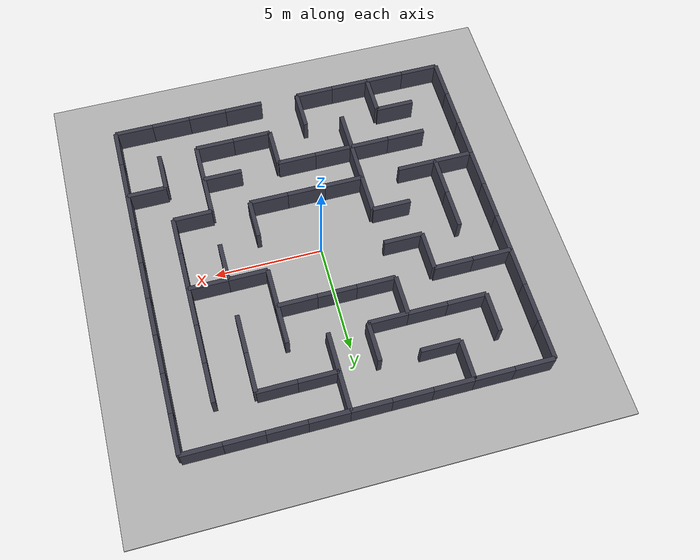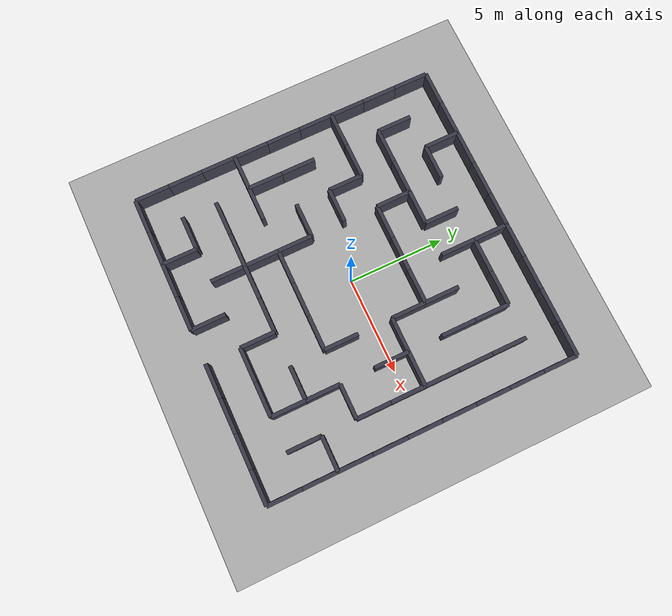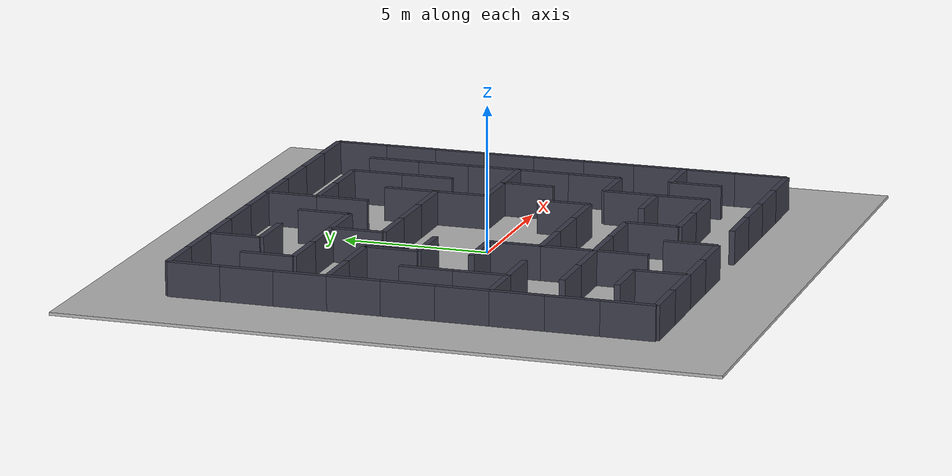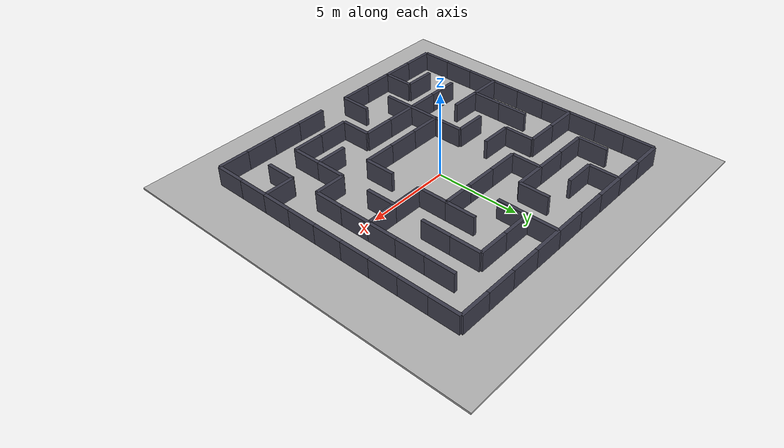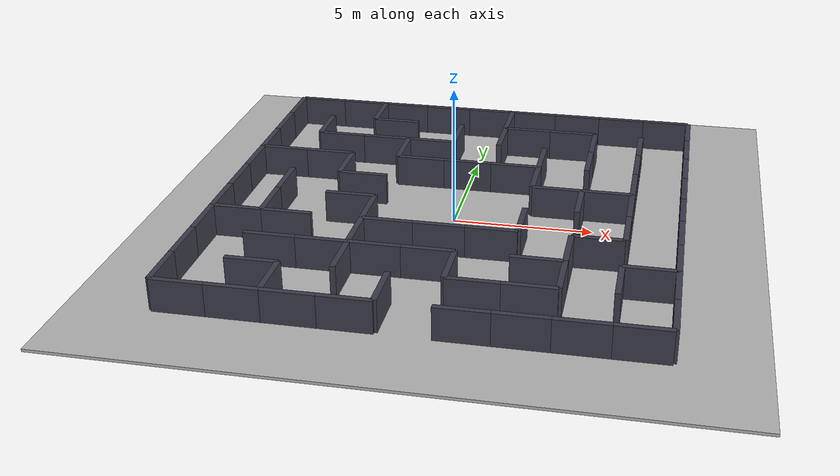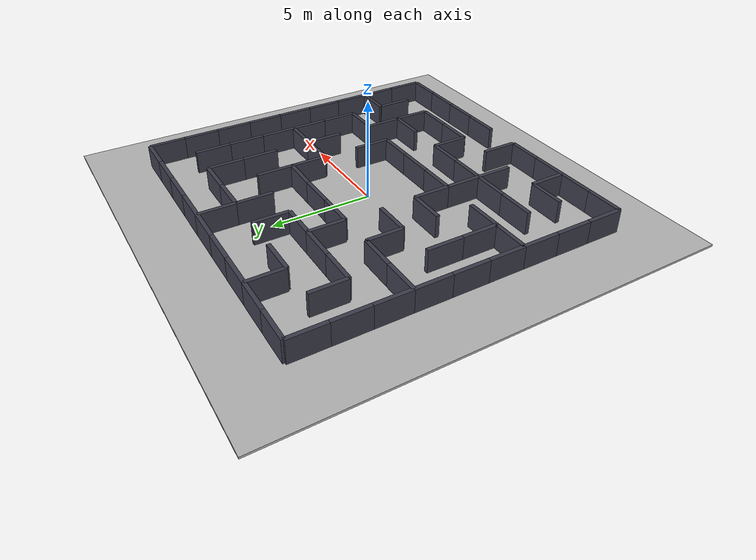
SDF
<?xml version='1.0'?>
<sdf version='1.9'>
  <!-- 9 x 9 cell maze. Cell pitch: 1.8 m, wall thickness: 0.2 m, clear width: 1.6 m. -->
  <world name='roboworks_world'>
    <physics name='default_physics' type='ode'>
      <max_step_size>0.001</max_step_size>
      <real_time_factor>1.0</real_time_factor>
      <real_time_update_rate>1000</real_time_update_rate>
    </physics>

    <plugin filename='gz-sim-physics-system' name='gz::sim::systems::Physics'/>
    <plugin filename='gz-sim-user-commands-system' name='gz::sim::systems::UserCommands'/>
    <plugin filename='gz-sim-sensors-system' name='gz::sim::systems::Sensors'/>
    <plugin filename='gz-sim-imu-system' name='gz::sim::systems::Imu'/>
    <plugin filename='gz-sim-scene-broadcaster-system' name='gz::sim::systems::SceneBroadcaster'/>

    <light name='sun' type='directional'>
      <pose>0 0 12 0 0 0</pose>
      <cast_shadows>true</cast_shadows>
      <diffuse>0.9 0.9 0.9 1</diffuse>
      <specular>0.2 0.2 0.2 1</specular>
      <direction>-0.5 0.1 -1</direction>
    </light>

    <model name='maze_ground'>
      <static>true</static>
      <link name='ground_link'>
        <collision name='ground_collision'><geometry><box><size>22 22 0.1</size></box></geometry></collision>
        <visual name='ground_visual'>
          <geometry><box><size>22 22 0.1</size></box></geometry>
          <material><ambient>0.72 0.72 0.72 1</ambient><diffuse>0.72 0.72 0.72 1</diffuse></material>
        </visual>
      </link>
    </model>

    <model name='maze_walls'>
      <static>true</static>
      <link name='walls'>
        <collision name='wall_0_collision'><pose>-6.3 -1.8 0.6 0 0 0</pose><geometry><box><size>0.2 1.8 1.2</size></box></geometry></collision>
        <collision name='wall_1_collision'><pose>-6.3 0.0 0.6 0 0 0</pose><geometry><box><size>0.2 1.8 1.2</size></box></geometry></collision>
        <collision name='wall_2_collision'><pose>-6.3 5.4 0.6 0 0 0</pose><geometry><box><size>0.2 1.8 1.2</size></box></geometry></collision>
        <collision name='wall_3_collision'><pose>-4.5 -7.2 0.6 0 0 0</pose><geometry><box><size>0.2 1.8 1.2</size></box></geometry></collision>
        <collision name='wall_4_collision'><pose>-4.5 1.8 0.6 0 0 0</pose><geometry><box><size>0.2 1.8 1.2</size></box></geometry></collision>
        <collision name='wall_5_collision'><pose>-4.5 7.2 0.6 0 0 0</pose><geometry><box><size>0.2 1.8 1.2</size></box></geometry></collision>
        <collision name='wall_6_collision'><pose>-2.7 -5.4 0.6 0 0 0</pose><geometry><box><size>0.2 1.8 1.2</size></box></geometry></collision>
        <collision name='wall_7_collision'><pose>-2.7 -3.6 0.6 0 0 0</pose><geometry><box><size>0.2 1.8 1.2</size></box></geometry></collision>
        <collision name='wall_8_collision'><pose>-2.7 -1.8 0.6 0 0 0</pose><geometry><box><size>0.2 1.8 1.2</size></box></geometry></collision>
        <collision name='wall_9_collision'><pose>-2.7 3.6 0.6 0 0 0</pose><geometry><box><size>0.2 1.8 1.2</size></box></geometry></collision>
        <collision name='wall_10_collision'><pose>-0.9 -7.2 0.6 0 0 0</pose><geometry><box><size>0.2 1.8 1.2</size></box></geometry></collision>
        <collision name='wall_11_collision'><pose>-0.9 5.4 0.6 0 0 0</pose><geometry><box><size>0.2 1.8 1.2</size></box></geometry></collision>
        <collision name='wall_12_collision'><pose>0.9 -5.4 0.6 0 0 0</pose><geometry><box><size>0.2 1.8 1.2</size></box></geometry></collision>
        <collision name='wall_13_collision'><pose>0.9 5.4 0.6 0 0 0</pose><geometry><box><size>0.2 1.8 1.2</size></box></geometry></collision>
        <collision name='wall_14_collision'><pose>0.9 7.2 0.6 0 0 0</pose><geometry><box><size>0.2 1.8 1.2</size></box></geometry></collision>
        <collision name='wall_15_collision'><pose>2.7 -1.8 0.6 0 0 0</pose><geometry><box><size>0.2 1.8 1.2</size></box></geometry></collision>
        <collision name='wall_16_collision'><pose>2.7 1.8 0.6 0 0 0</pose><geometry><box><size>0.2 1.8 1.2</size></box></geometry></collision>
        <collision name='wall_17_collision'><pose>2.7 3.6 0.6 0 0 0</pose><geometry><box><size>0.2 1.8 1.2</size></box></geometry></collision>
        <collision name='wall_18_collision'><pose>4.5 -5.4 0.6 0 0 0</pose><geometry><box><size>0.2 1.8 1.2</size></box></geometry></collision>
        <collision name='wall_19_collision'><pose>4.5 -3.6 0.6 0 0 0</pose><geometry><box><size>0.2 1.8 1.2</size></box></geometry></collision>
        <collision name='wall_20_collision'><pose>4.5 0.0 0.6 0 0 0</pose><geometry><box><size>0.2 1.8 1.2</size></box></geometry></collision>
        <collision name='wall_21_collision'><pose>4.5 3.6 0.6 0 0 0</pose><geometry><box><size>0.2 1.8 1.2</size></box></geometry></collision>
        <collision name='wall_22_collision'><pose>4.5 5.4 0.6 0 0 0</pose><geometry><box><size>0.2 1.8 1.2</size></box></geometry></collision>
        <collision name='wall_23_collision'><pose>6.3 -5.4 0.6 0 0 0</pose><geometry><box><size>0.2 1.8 1.2</size></box></geometry></collision>
        <collision name='wall_24_collision'><pose>6.3 -1.8 0.6 0 0 0</pose><geometry><box><size>0.2 1.8 1.2</size></box></geometry></collision>
        <collision name='wall_25_collision'><pose>6.3 0.0 0.6 0 0 0</pose><geometry><box><size>0.2 1.8 1.2</size></box></geometry></collision>
        <collision name='wall_26_collision'><pose>6.3 1.8 0.6 0 0 0</pose><geometry><box><size>0.2 1.8 1.2</size></box></geometry></collision>
        <collision name='wall_27_collision'><pose>6.3 3.6 0.6 0 0 0</pose><geometry><box><size>0.2 1.8 1.2</size></box></geometry></collision>
        <collision name='wall_28_collision'><pose>6.3 5.4 0.6 0 0 0</pose><geometry><box><size>0.2 1.8 1.2</size></box></geometry></collision>
        <collision name='wall_29_collision'><pose>-7.2 -2.7 0.6 0 0 0</pose><geometry><box><size>1.8 0.2 1.2</size></box></geometry></collision>
        <collision name='wall_30_collision'><pose>-7.2 2.7 0.6 0 0 0</pose><geometry><box><size>1.8 0.2 1.2</size></box></geometry></collision>
        <collision name='wall_31_collision'><pose>-5.4 -6.3 0.6 0 0 0</pose><geometry><box><size>1.8 0.2 1.2</size></box></geometry></collision>
        <collision name='wall_32_collision'><pose>-5.4 -4.5 0.6 0 0 0</pose><geometry><box><size>1.8 0.2 1.2</size></box></geometry></collision>
        <collision name='wall_33_collision'><pose>-5.4 -2.7 0.6 0 0 0</pose><geometry><box><size>1.8 0.2 1.2</size></box></geometry></collision>
        <collision name='wall_34_collision'><pose>-5.4 2.7 0.6 0 0 0</pose><geometry><box><size>1.8 0.2 1.2</size></box></geometry></collision>
        <collision name='wall_35_collision'><pose>-5.4 4.5 0.6 0 0 0</pose><geometry><box><size>1.8 0.2 1.2</size></box></geometry></collision>
        <collision name='wall_36_collision'><pose>-3.6 -4.5 0.6 0 0 0</pose><geometry><box><size>1.8 0.2 1.2</size></box></geometry></collision>
        <collision name='wall_37_collision'><pose>-3.6 -0.9 0.6 0 0 0</pose><geometry><box><size>1.8 0.2 1.2</size></box></geometry></collision>
        <collision name='wall_38_collision'><pose>-3.6 0.9 0.6 0 0 0</pose><geometry><box><size>1.8 0.2 1.2</size></box></geometry></collision>
        <collision name='wall_39_collision'><pose>-3.6 4.5 0.6 0 0 0</pose><geometry><box><size>1.8 0.2 1.2</size></box></geometry></collision>
        <collision name='wall_40_collision'><pose>-3.6 6.3 0.6 0 0 0</pose><geometry><box><size>1.8 0.2 1.2</size></box></geometry></collision>
        <collision name='wall_41_collision'><pose>-1.8 -4.5 0.6 0 0 0</pose><geometry><box><size>1.8 0.2 1.2</size></box></geometry></collision>
        <collision name='wall_42_collision'><pose>-1.8 -2.7 0.6 0 0 0</pose><geometry><box><size>1.8 0.2 1.2</size></box></geometry></collision>
        <collision name='wall_43_collision'><pose>-1.8 2.7 0.6 0 0 0</pose><geometry><box><size>1.8 0.2 1.2</size></box></geometry></collision>
        <collision name='wall_44_collision'><pose>-1.8 4.5 0.6 0 0 0</pose><geometry><box><size>1.8 0.2 1.2</size></box></geometry></collision>
        <collision name='wall_45_collision'><pose>0.0 -4.5 0.6 0 0 0</pose><geometry><box><size>1.8 0.2 1.2</size></box></geometry></collision>
        <collision name='wall_46_collision'><pose>0.0 -2.7 0.6 0 0 0</pose><geometry><box><size>1.8 0.2 1.2</size></box></geometry></collision>
        <collision name='wall_47_collision'><pose>0.0 2.7 0.6 0 0 0</pose><geometry><box><size>1.8 0.2 1.2</size></box></geometry></collision>
        <collision name='wall_48_collision'><pose>1.8 -6.3 0.6 0 0 0</pose><geometry><box><size>1.8 0.2 1.2</size></box></geometry></collision>
        <collision name='wall_49_collision'><pose>1.8 -2.7 0.6 0 0 0</pose><geometry><box><size>1.8 0.2 1.2</size></box></geometry></collision>
        <collision name='wall_50_collision'><pose>1.8 2.7 0.6 0 0 0</pose><geometry><box><size>1.8 0.2 1.2</size></box></geometry></collision>
        <collision name='wall_51_collision'><pose>1.8 6.3 0.6 0 0 0</pose><geometry><box><size>1.8 0.2 1.2</size></box></geometry></collision>
        <collision name='wall_52_collision'><pose>3.6 -6.3 0.6 0 0 0</pose><geometry><box><size>1.8 0.2 1.2</size></box></geometry></collision>
        <collision name='wall_53_collision'><pose>3.6 -4.5 0.6 0 0 0</pose><geometry><box><size>1.8 0.2 1.2</size></box></geometry></collision>
        <collision name='wall_54_collision'><pose>3.6 0.9 0.6 0 0 0</pose><geometry><box><size>1.8 0.2 1.2</size></box></geometry></collision>
        <collision name='wall_55_collision'><pose>3.6 6.3 0.6 0 0 0</pose><geometry><box><size>1.8 0.2 1.2</size></box></geometry></collision>
        <collision name='wall_56_collision'><pose>5.4 -2.7 0.6 0 0 0</pose><geometry><box><size>1.8 0.2 1.2</size></box></geometry></collision>
        <collision name='wall_57_collision'><pose>5.4 0.9 0.6 0 0 0</pose><geometry><box><size>1.8 0.2 1.2</size></box></geometry></collision>
        <collision name='wall_58_collision'><pose>7.2 -4.5 0.6 0 0 0</pose><geometry><box><size>1.8 0.2 1.2</size></box></geometry></collision>
        <collision name='wall_59_collision'><pose>-7.2 -8.1 0.6 0 0 0</pose><geometry><box><size>1.8 0.2 1.2</size></box></geometry></collision>
        <collision name='wall_60_collision'><pose>-7.2 8.1 0.6 0 0 0</pose><geometry><box><size>1.8 0.2 1.2</size></box></geometry></collision>
        <collision name='wall_61_collision'><pose>-5.4 -8.1 0.6 0 0 0</pose><geometry><box><size>1.8 0.2 1.2</size></box></geometry></collision>
        <collision name='wall_62_collision'><pose>-5.4 8.1 0.6 0 0 0</pose><geometry><box><size>1.8 0.2 1.2</size></box></geometry></collision>
        <collision name='wall_63_collision'><pose>-3.6 -8.1 0.6 0 0 0</pose><geometry><box><size>1.8 0.2 1.2</size></box></geometry></collision>
        <collision name='wall_64_collision'><pose>-3.6 8.1 0.6 0 0 0</pose><geometry><box><size>1.8 0.2 1.2</size></box></geometry></collision>
        <collision name='wall_65_collision'><pose>-1.8 -8.1 0.6 0 0 0</pose><geometry><box><size>1.8 0.2 1.2</size></box></geometry></collision>
        <collision name='wall_66_collision'><pose>-1.8 8.1 0.6 0 0 0</pose><geometry><box><size>1.8 0.2 1.2</size></box></geometry></collision>
        <collision name='wall_67_collision'><pose>0.0 8.1 0.6 0 0 0</pose><geometry><box><size>1.8 0.2 1.2</size></box></geometry></collision>
        <collision name='wall_68_collision'><pose>1.8 -8.1 0.6 0 0 0</pose><geometry><box><size>1.8 0.2 1.2</size></box></geometry></collision>
        <collision name='wall_69_collision'><pose>1.8 8.1 0.6 0 0 0</pose><geometry><box><size>1.8 0.2 1.2</size></box></geometry></collision>
        <collision name='wall_70_collision'><pose>3.6 -8.1 0.6 0 0 0</pose><geometry><box><size>1.8 0.2 1.2</size></box></geometry></collision>
        <collision name='wall_71_collision'><pose>3.6 8.1 0.6 0 0 0</pose><geometry><box><size>1.8 0.2 1.2</size></box></geometry></collision>
        <collision name='wall_72_collision'><pose>5.4 -8.1 0.6 0 0 0</pose><geometry><box><size>1.8 0.2 1.2</size></box></geometry></collision>
        <collision name='wall_73_collision'><pose>5.4 8.1 0.6 0 0 0</pose><geometry><box><size>1.8 0.2 1.2</size></box></geometry></collision>
        <collision name='wall_74_collision'><pose>7.2 -8.1 0.6 0 0 0</pose><geometry><box><size>1.8 0.2 1.2</size></box></geometry></collision>
        <collision name='wall_75_collision'><pose>7.2 8.1 0.6 0 0 0</pose><geometry><box><size>1.8 0.2 1.2</size></box></geometry></collision>
        <collision name='wall_76_collision'><pose>-8.1 -7.2 0.6 0 0 0</pose><geometry><box><size>0.2 1.8 1.2</size></box></geometry></collision>
        <collision name='wall_77_collision'><pose>8.1 -7.2 0.6 0 0 0</pose><geometry><box><size>0.2 1.8 1.2</size></box></geometry></collision>
        <collision name='wall_78_collision'><pose>-8.1 -5.4 0.6 0 0 0</pose><geometry><box><size>0.2 1.8 1.2</size></box></geometry></collision>
        <collision name='wall_79_collision'><pose>8.1 -5.4 0.6 0 0 0</pose><geometry><box><size>0.2 1.8 1.2</size></box></geometry></collision>
        <collision name='wall_80_collision'><pose>-8.1 -3.6 0.6 0 0 0</pose><geometry><box><size>0.2 1.8 1.2</size></box></geometry></collision>
        <collision name='wall_81_collision'><pose>8.1 -3.6 0.6 0 0 0</pose><geometry><box><size>0.2 1.8 1.2</size></box></geometry></collision>
        <collision name='wall_82_collision'><pose>-8.1 -1.8 0.6 0 0 0</pose><geometry><box><size>0.2 1.8 1.2</size></box></geometry></collision>
        <collision name='wall_83_collision'><pose>8.1 -1.8 0.6 0 0 0</pose><geometry><box><size>0.2 1.8 1.2</size></box></geometry></collision>
        <collision name='wall_84_collision'><pose>-8.1 0.0 0.6 0 0 0</pose><geometry><box><size>0.2 1.8 1.2</size></box></geometry></collision>
        <collision name='wall_85_collision'><pose>8.1 0.0 0.6 0 0 0</pose><geometry><box><size>0.2 1.8 1.2</size></box></geometry></collision>
        <collision name='wall_86_collision'><pose>-8.1 1.8 0.6 0 0 0</pose><geometry><box><size>0.2 1.8 1.2</size></box></geometry></collision>
        <collision name='wall_87_collision'><pose>8.1 1.8 0.6 0 0 0</pose><geometry><box><size>0.2 1.8 1.2</size></box></geometry></collision>
        <collision name='wall_88_collision'><pose>-8.1 3.6 0.6 0 0 0</pose><geometry><box><size>0.2 1.8 1.2</size></box></geometry></collision>
        <collision name='wall_89_collision'><pose>8.1 3.6 0.6 0 0 0</pose><geometry><box><size>0.2 1.8 1.2</size></box></geometry></collision>
        <collision name='wall_90_collision'><pose>-8.1 5.4 0.6 0 0 0</pose><geometry><box><size>0.2 1.8 1.2</size></box></geometry></collision>
        <collision name='wall_91_collision'><pose>8.1 5.4 0.6 0 0 0</pose><geometry><box><size>0.2 1.8 1.2</size></box></geometry></collision>
        <collision name='wall_92_collision'><pose>-8.1 7.2 0.6 0 0 0</pose><geometry><box><size>0.2 1.8 1.2</size></box></geometry></collision>
        <collision name='wall_93_collision'><pose>8.1 7.2 0.6 0 0 0</pose><geometry><box><size>0.2 1.8 1.2</size></box></geometry></collision>

        <visual name='wall_0_visual'><pose>-6.3 -1.8 0.6 0 0 0</pose><geometry><box><size>0.2 1.8 1.2</size></box></geometry><material><ambient>0.18 0.18 0.22 1</ambient><diffuse>0.24 0.24 0.30 1</diffuse></material></visual>
        <visual name='wall_1_visual'><pose>-6.3 0.0 0.6 0 0 0</pose><geometry><box><size>0.2 1.8 1.2</size></box></geometry><material><ambient>0.18 0.18 0.22 1</ambient><diffuse>0.24 0.24 0.30 1</diffuse></material></visual>
        <visual name='wall_2_visual'><pose>-6.3 5.4 0.6 0 0 0</pose><geometry><box><size>0.2 1.8 1.2</size></box></geometry><material><ambient>0.18 0.18 0.22 1</ambient><diffuse>0.24 0.24 0.30 1</diffuse></material></visual>
        <visual name='wall_3_visual'><pose>-4.5 -7.2 0.6 0 0 0</pose><geometry><box><size>0.2 1.8 1.2</size></box></geometry><material><ambient>0.18 0.18 0.22 1</ambient><diffuse>0.24 0.24 0.30 1</diffuse></material></visual>
        <visual name='wall_4_visual'><pose>-4.5 1.8 0.6 0 0 0</pose><geometry><box><size>0.2 1.8 1.2</size></box></geometry><material><ambient>0.18 0.18 0.22 1</ambient><diffuse>0.24 0.24 0.30 1</diffuse></material></visual>
        <visual name='wall_5_visual'><pose>-4.5 7.2 0.6 0 0 0</pose><geometry><box><size>0.2 1.8 1.2</size></box></geometry><material><ambient>0.18 0.18 0.22 1</ambient><diffuse>0.24 0.24 0.30 1</diffuse></material></visual>
        <visual name='wall_6_visual'><pose>-2.7 -5.4 0.6 0 0 0</pose><geometry><box><size>0.2 1.8 1.2</size></box></geometry><material><ambient>0.18 0.18 0.22 1</ambient><diffuse>0.24 0.24 0.30 1</diffuse></material></visual>
        <visual name='wall_7_visual'><pose>-2.7 -3.6 0.6 0 0 0</pose><geometry><box><size>0.2 1.8 1.2</size></box></geometry><material><ambient>0.18 0.18 0.22 1</ambient><diffuse>0.24 0.24 0.30 1</diffuse></material></visual>
        <visual name='wall_8_visual'><pose>-2.7 -1.8 0.6 0 0 0</pose><geometry><box><size>0.2 1.8 1.2</size></box></geometry><material><ambient>0.18 0.18 0.22 1</ambient><diffuse>0.24 0.24 0.30 1</diffuse></material></visual>
        <visual name='wall_9_visual'><pose>-2.7 3.6 0.6 0 0 0</pose><geometry><box><size>0.2 1.8 1.2</size></box></geometry><material><ambient>0.18 0.18 0.22 1</ambient><diffuse>0.24 0.24 0.30 1</diffuse></material></visual>
        <visual name='wall_10_visual'><pose>-0.9 -7.2 0.6 0 0 0</pose><geometry><box><size>0.2 1.8 1.2</size></box></geometry><material><ambient>0.18 0.18 0.22 1</ambient><diffuse>0.24 0.24 0.30 1</diffuse></material></visual>
        <visual name='wall_11_visual'><pose>-0.9 5.4 0.6 0 0 0</pose><geometry><box><size>0.2 1.8 1.2</size></box></geometry><material><ambient>0.18 0.18 0.22 1</ambient><diffuse>0.24 0.24 0.30 1</diffuse></material></visual>
        <visual name='wall_12_visual'><pose>0.9 -5.4 0.6 0 0 0</pose><geometry><box><size>0.2 1.8 1.2</size></box></geometry><material><ambient>0.18 0.18 0.22 1</ambient><diffuse>0.24 0.24 0.30 1</diffuse></material></visual>
        <visual name='wall_13_visual'><pose>0.9 5.4 0.6 0 0 0</pose><geometry><box><size>0.2 1.8 1.2</size></box></geometry><material><ambient>0.18 0.18 0.22 1</ambient><diffuse>0.24 0.24 0.30 1</diffuse></material></visual>
        <visual name='wall_14_visual'><pose>0.9 7.2 0.6 0 0 0</pose><geometry><box><size>0.2 1.8 1.2</size></box></geometry><material><ambient>0.18 0.18 0.22 1</ambient><diffuse>0.24 0.24 0.30 1</diffuse></material></visual>
        <visual name='wall_15_visual'><pose>2.7 -1.8 0.6 0 0 0</pose><geometry><box><size>0.2 1.8 1.2</size></box></geometry><material><ambient>0.18 0.18 0.22 1</ambient><diffuse>0.24 0.24 0.30 1</diffuse></material></visual>
        <visual name='wall_16_visual'><pose>2.7 1.8 0.6 0 0 0</pose><geometry><box><size>0.2 1.8 1.2</size></box></geometry><material><ambient>0.18 0.18 0.22 1</ambient><diffuse>0.24 0.24 0.30 1</diffuse></material></visual>
        <visual name='wall_17_visual'><pose>2.7 3.6 0.6 0 0 0</pose><geometry><box><size>0.2 1.8 1.2</size></box></geometry><material><ambient>0.18 0.18 0.22 1</ambient><diffuse>0.24 0.24 0.30 1</diffuse></material></visual>
        <visual name='wall_18_visual'><pose>4.5 -5.4 0.6 0 0 0</pose><geometry><box><size>0.2 1.8 1.2</size></box></geometry><material><ambient>0.18 0.18 0.22 1</ambient><diffuse>0.24 0.24 0.30 1</diffuse></material></visual>
        <visual name='wall_19_visual'><pose>4.5 -3.6 0.6 0 0 0</pose><geometry><box><size>0.2 1.8 1.2</size></box></geometry><material><ambient>0.18 0.18 0.22 1</ambient><diffuse>0.24 0.24 0.30 1</diffuse></material></visual>
        <visual name='wall_20_visual'><pose>4.5 0.0 0.6 0 0 0</pose><geometry><box><size>0.2 1.8 1.2</size></box></geometry><material><ambient>0.18 0.18 0.22 1</ambient><diffuse>0.24 0.24 0.30 1</diffuse></material></visual>
        <visual name='wall_21_visual'><pose>4.5 3.6 0.6 0 0 0</pose><geometry><box><size>0.2 1.8 1.2</size></box></geometry><material><ambient>0.18 0.18 0.22 1</ambient><diffuse>0.24 0.24 0.30 1</diffuse></material></visual>
        <visual name='wall_22_visual'><pose>4.5 5.4 0.6 0 0 0</pose><geometry><box><size>0.2 1.8 1.2</size></box></geometry><material><ambient>0.18 0.18 0.22 1</ambient><diffuse>0.24 0.24 0.30 1</diffuse></material></visual>
        <visual name='wall_23_visual'><pose>6.3 -5.4 0.6 0 0 0</pose><geometry><box><size>0.2 1.8 1.2</size></box></geometry><material><ambient>0.18 0.18 0.22 1</ambient><diffuse>0.24 0.24 0.30 1</diffuse></material></visual>
        <visual name='wall_24_visual'><pose>6.3 -1.8 0.6 0 0 0</pose><geometry><box><size>0.2 1.8 1.2</size></box></geometry><material><ambient>0.18 0.18 0.22 1</ambient><diffuse>0.24 0.24 0.30 1</diffuse></material></visual>
        <visual name='wall_25_visual'><pose>6.3 0.0 0.6 0 0 0</pose><geometry><box><size>0.2 1.8 1.2</size></box></geometry><material><ambient>0.18 0.18 0.22 1</ambient><diffuse>0.24 0.24 0.30 1</diffuse></material></visual>
        <visual name='wall_26_visual'><pose>6.3 1.8 0.6 0 0 0</pose><geometry><box><size>0.2 1.8 1.2</size></box></geometry><material><ambient>0.18 0.18 0.22 1</ambient><diffuse>0.24 0.24 0.30 1</diffuse></material></visual>
        <visual name='wall_27_visual'><pose>6.3 3.6 0.6 0 0 0</pose><geometry><box><size>0.2 1.8 1.2</size></box></geometry><material><ambient>0.18 0.18 0.22 1</ambient><diffuse>0.24 0.24 0.30 1</diffuse></material></visual>
        <visual name='wall_28_visual'><pose>6.3 5.4 0.6 0 0 0</pose><geometry><box><size>0.2 1.8 1.2</size></box></geometry><material><ambient>0.18 0.18 0.22 1</ambient><diffuse>0.24 0.24 0.30 1</diffuse></material></visual>
        <visual name='wall_29_visual'><pose>-7.2 -2.7 0.6 0 0 0</pose><geometry><box><size>1.8 0.2 1.2</size></box></geometry><material><ambient>0.18 0.18 0.22 1</ambient><diffuse>0.24 0.24 0.30 1</diffuse></material></visual>
        <visual name='wall_30_visual'><pose>-7.2 2.7 0.6 0 0 0</pose><geometry><box><size>1.8 0.2 1.2</size></box></geometry><material><ambient>0.18 0.18 0.22 1</ambient><diffuse>0.24 0.24 0.30 1</diffuse></material></visual>
        <visual name='wall_31_visual'><pose>-5.4 -6.3 0.6 0 0 0</pose><geometry><box><size>1.8 0.2 1.2</size></box></geometry><material><ambient>0.18 0.18 0.22 1</ambient><diffuse>0.24 0.24 0.30 1</diffuse></material></visual>
        <visual name='wall_32_visual'><pose>-5.4 -4.5 0.6 0 0 0</pose><geometry><box><size>1.8 0.2 1.2</size></box></geometry><material><ambient>0.18 0.18 0.22 1</ambient><diffuse>0.24 0.24 0.30 1</diffuse></material></visual>
        <visual name='wall_33_visual'><pose>-5.4 -2.7 0.6 0 0 0</pose><geometry><box><size>1.8 0.2 1.2</size></box></geometry><material><ambient>0.18 0.18 0.22 1</ambient><diffuse>0.24 0.24 0.30 1</diffuse></material></visual>
        <visual name='wall_34_visual'><pose>-5.4 2.7 0.6 0 0 0</pose><geometry><box><size>1.8 0.2 1.2</size></box></geometry><material><ambient>0.18 0.18 0.22 1</ambient><diffuse>0.24 0.24 0.30 1</diffuse></material></visual>
        <visual name='wall_35_visual'><pose>-5.4 4.5 0.6 0 0 0</pose><geometry><box><size>1.8 0.2 1.2</size></box></geometry><material><ambient>0.18 0.18 0.22 1</ambient><diffuse>0.24 0.24 0.30 1</diffuse></material></visual>
        <visual name='wall_36_visual'><pose>-3.6 -4.5 0.6 0 0 0</pose><geometry><box><size>1.8 0.2 1.2</size></box></geometry><material><ambient>0.18 0.18 0.22 1</ambient><diffuse>0.24 0.24 0.30 1</diffuse></material></visual>
        <visual name='wall_37_visual'><pose>-3.6 -0.9 0.6 0 0 0</pose><geometry><box><size>1.8 0.2 1.2</size></box></geometry><material><ambient>0.18 0.18 0.22 1</ambient><diffuse>0.24 0.24 0.30 1</diffuse></material></visual>
        <visual name='wall_38_visual'><pose>-3.6 0.9 0.6 0 0 0</pose><geometry><box><size>1.8 0.2 1.2</size></box></geometry><material><ambient>0.18 0.18 0.22 1</ambient><diffuse>0.24 0.24 0.30 1</diffuse></material></visual>
        <visual name='wall_39_visual'><pose>-3.6 4.5 0.6 0 0 0</pose><geometry><box><size>1.8 0.2 1.2</size></box></geometry><material><ambient>0.18 0.18 0.22 1</ambient><diffuse>0.24 0.24 0.30 1</diffuse></material></visual>
        <visual name='wall_40_visual'><pose>-3.6 6.3 0.6 0 0 0</pose><geometry><box><size>1.8 0.2 1.2</size></box></geometry><material><ambient>0.18 0.18 0.22 1</ambient><diffuse>0.24 0.24 0.30 1</diffuse></material></visual>
        <visual name='wall_41_visual'><pose>-1.8 -4.5 0.6 0 0 0</pose><geometry><box><size>1.8 0.2 1.2</size></box></geometry><material><ambient>0.18 0.18 0.22 1</ambient><diffuse>0.24 0.24 0.30 1</diffuse></material></visual>
        <visual name='wall_42_visual'><pose>-1.8 -2.7 0.6 0 0 0</pose><geometry><box><size>1.8 0.2 1.2</size></box></geometry><material><ambient>0.18 0.18 0.22 1</ambient><diffuse>0.24 0.24 0.30 1</diffuse></material></visual>
        <visual name='wall_43_visual'><pose>-1.8 2.7 0.6 0 0 0</pose><geometry><box><size>1.8 0.2 1.2</size></box></geometry><material><ambient>0.18 0.18 0.22 1</ambient><diffuse>0.24 0.24 0.30 1</diffuse></material></visual>
        <visual name='wall_44_visual'><pose>-1.8 4.5 0.6 0 0 0</pose><geometry><box><size>1.8 0.2 1.2</size></box></geometry><material><ambient>0.18 0.18 0.22 1</ambient><diffuse>0.24 0.24 0.30 1</diffuse></material></visual>
        <visual name='wall_45_visual'><pose>0.0 -4.5 0.6 0 0 0</pose><geometry><box><size>1.8 0.2 1.2</size></box></geometry><material><ambient>0.18 0.18 0.22 1</ambient><diffuse>0.24 0.24 0.30 1</diffuse></material></visual>
        <visual name='wall_46_visual'><pose>0.0 -2.7 0.6 0 0 0</pose><geometry><box><size>1.8 0.2 1.2</size></box></geometry><material><ambient>0.18 0.18 0.22 1</ambient><diffuse>0.24 0.24 0.30 1</diffuse></material></visual>
        <visual name='wall_47_visual'><pose>0.0 2.7 0.6 0 0 0</pose><geometry><box><size>1.8 0.2 1.2</size></box></geometry><material><ambient>0.18 0.18 0.22 1</ambient><diffuse>0.24 0.24 0.30 1</diffuse></material></visual>
        <visual name='wall_48_visual'><pose>1.8 -6.3 0.6 0 0 0</pose><geometry><box><size>1.8 0.2 1.2</size></box></geometry><material><ambient>0.18 0.18 0.22 1</ambient><diffuse>0.24 0.24 0.30 1</diffuse></material></visual>
        <visual name='wall_49_visual'><pose>1.8 -2.7 0.6 0 0 0</pose><geometry><box><size>1.8 0.2 1.2</size></box></geometry><material><ambient>0.18 0.18 0.22 1</ambient><diffuse>0.24 0.24 0.30 1</diffuse></material></visual>
        <visual name='wall_50_visual'><pose>1.8 2.7 0.6 0 0 0</pose><geometry><box><size>1.8 0.2 1.2</size></box></geometry><material><ambient>0.18 0.18 0.22 1</ambient><diffuse>0.24 0.24 0.30 1</diffuse></material></visual>
        <visual name='wall_51_visual'><pose>1.8 6.3 0.6 0 0 0</pose><geometry><box><size>1.8 0.2 1.2</size></box></geometry><material><ambient>0.18 0.18 0.22 1</ambient><diffuse>0.24 0.24 0.30 1</diffuse></material></visual>
        <visual name='wall_52_visual'><pose>3.6 -6.3 0.6 0 0 0</pose><geometry><box><size>1.8 0.2 1.2</size></box></geometry><material><ambient>0.18 0.18 0.22 1</ambient><diffuse>0.24 0.24 0.30 1</diffuse></material></visual>
        <visual name='wall_53_visual'><pose>3.6 -4.5 0.6 0 0 0</pose><geometry><box><size>1.8 0.2 1.2</size></box></geometry><material><ambient>0.18 0.18 0.22 1</ambient><diffuse>0.24 0.24 0.30 1</diffuse></material></visual>
        <visual name='wall_54_visual'><pose>3.6 0.9 0.6 0 0 0</pose><geometry><box><size>1.8 0.2 1.2</size></box></geometry><material><ambient>0.18 0.18 0.22 1</ambient><diffuse>0.24 0.24 0.30 1</diffuse></material></visual>
        <visual name='wall_55_visual'><pose>3.6 6.3 0.6 0 0 0</pose><geometry><box><size>1.8 0.2 1.2</size></box></geometry><material><ambient>0.18 0.18 0.22 1</ambient><diffuse>0.24 0.24 0.30 1</diffuse></material></visual>
        <visual name='wall_56_visual'><pose>5.4 -2.7 0.6 0 0 0</pose><geometry><box><size>1.8 0.2 1.2</size></box></geometry><material><ambient>0.18 0.18 0.22 1</ambient><diffuse>0.24 0.24 0.30 1</diffuse></material></visual>
        <visual name='wall_57_visual'><pose>5.4 0.9 0.6 0 0 0</pose><geometry><box><size>1.8 0.2 1.2</size></box></geometry><material><ambient>0.18 0.18 0.22 1</ambient><diffuse>0.24 0.24 0.30 1</diffuse></material></visual>
        <visual name='wall_58_visual'><pose>7.2 -4.5 0.6 0 0 0</pose><geometry><box><size>1.8 0.2 1.2</size></box></geometry><material><ambient>0.18 0.18 0.22 1</ambient><diffuse>0.24 0.24 0.30 1</diffuse></material></visual>
        <visual name='wall_59_visual'><pose>-7.2 -8.1 0.6 0 0 0</pose><geometry><box><size>1.8 0.2 1.2</size></box></geometry><material><ambient>0.18 0.18 0.22 1</ambient><diffuse>0.24 0.24 0.30 1</diffuse></material></visual>
        <visual name='wall_60_visual'><pose>-7.2 8.1 0.6 0 0 0</pose><geometry><box><size>1.8 0.2 1.2</size></box></geometry><material><ambient>0.18 0.18 0.22 1</ambient><diffuse>0.24 0.24 0.30 1</diffuse></material></visual>
        <visual name='wall_61_visual'><pose>-5.4 -8.1 0.6 0 0 0</pose><geometry><box><size>1.8 0.2 1.2</size></box></geometry><material><ambient>0.18 0.18 0.22 1</ambient><diffuse>0.24 0.24 0.30 1</diffuse></material></visual>
        <visual name='wall_62_visual'><pose>-5.4 8.1 0.6 0 0 0</pose><geometry><box><size>1.8 0.2 1.2</size></box></geometry><material><ambient>0.18 0.18 0.22 1</ambient><diffuse>0.24 0.24 0.30 1</diffuse></material></visual>
        <visual name='wall_63_visual'><pose>-3.6 -8.1 0.6 0 0 0</pose><geometry><box><size>1.8 0.2 1.2</size></box></geometry><material><ambient>0.18 0.18 0.22 1</ambient><diffuse>0.24 0.24 0.30 1</diffuse></material></visual>
        <visual name='wall_64_visual'><pose>-3.6 8.1 0.6 0 0 0</pose><geometry><box><size>1.8 0.2 1.2</size></box></geometry><material><ambient>0.18 0.18 0.22 1</ambient><diffuse>0.24 0.24 0.30 1</diffuse></material></visual>
        <visual name='wall_65_visual'><pose>-1.8 -8.1 0.6 0 0 0</pose><geometry><box><size>1.8 0.2 1.2</size></box></geometry><material><ambient>0.18 0.18 0.22 1</ambient><diffuse>0.24 0.24 0.30 1</diffuse></material></visual>
        <visual name='wall_66_visual'><pose>-1.8 8.1 0.6 0 0 0</pose><geometry><box><size>1.8 0.2 1.2</size></box></geometry><material><ambient>0.24 0.24 0.30 1</ambient><diffuse>0.24 0.24 0.30 1</diffuse></material></visual>
        <visual name='wall_67_visual'><pose>0.0 8.1 0.6 0 0 0</pose><geometry><box><size>1.8 0.2 1.2</size></box></geometry><material><ambient>0.18 0.18 0.22 1</ambient><diffuse>0.24 0.24 0.30 1</diffuse></material></visual>
        <visual name='wall_68_visual'><pose>1.8 -8.1 0.6 0 0 0</pose><geometry><box><size>1.8 0.2 1.2</size></box></geometry><material><ambient>0.18 0.18 0.22 1</ambient><diffuse>0.24 0.24 0.30 1</diffuse></material></visual>
        <visual name='wall_69_visual'><pose>1.8 8.1 0.6 0 0 0</pose><geometry><box><size>1.8 0.2 1.2</size></box></geometry><material><ambient>0.18 0.18 0.22 1</ambient><diffuse>0.24 0.24 0.30 1</diffuse></material></visual>
        <visual name='wall_70_visual'><pose>3.6 -8.1 0.6 0 0 0</pose><geometry><box><size>1.8 0.2 1.2</size></box></geometry><material><ambient>0.18 0.18 0.22 1</ambient><diffuse>0.24 0.24 0.30 1</diffuse></material></visual>
        <visual name='wall_71_visual'><pose>3.6 8.1 0.6 0 0 0</pose><geometry><box><size>1.8 0.2 1.2</size></box></geometry><material><ambient>0.24 0.24 0.30 1</ambient><diffuse>0.24 0.24 0.30 1</diffuse></material></visual>
        <visual name='wall_72_visual'><pose>5.4 -8.1 0.6 0 0 0</pose><geometry><box><size>1.8 0.2 1.2</size></box></geometry><material><ambient>0.18 0.18 0.22 1</ambient><diffuse>0.24 0.24 0.30 1</diffuse></material></visual>
        <visual name='wall_73_visual'><pose>5.4 8.1 0.6 0 0 0</pose><geometry><box><size>1.8 0.2 1.2</size></box></geometry><material><ambient>0.18 0.18 0.22 1</ambient><diffuse>0.24 0.24 0.30 1</diffuse></material></visual>
        <visual name='wall_74_visual'><pose>7.2 -8.1 0.6 0 0 0</pose><geometry><box><size>1.8 0.2 1.2</size></box></geometry><material><ambient>0.18 0.18 0.22 1</ambient><diffuse>0.24 0.24 0.30 1</diffuse></material></visual>
        <visual name='wall_75_visual'><pose>7.2 8.1 0.6 0 0 0</pose><geometry><box><size>1.8 0.2 1.2</size></box></geometry><material><ambient>0.18 0.18 0.22 1</ambient><diffuse>0.24 0.24 0.30 1</diffuse></material></visual>
        <visual name='wall_76_visual'><pose>-8.1 -7.2 0.6 0 0 0</pose><geometry><box><size>0.2 1.8 1.2</size></box></geometry><material><ambient>0.18 0.18 0.22 1</ambient><diffuse>0.24 0.24 0.30 1</diffuse></material></visual>
        <visual name='wall_77_visual'><pose>8.1 -7.2 0.6 0 0 0</pose><geometry><box><size>0.2 1.8 1.2</size></box></geometry><material><ambient>0.18 0.18 0.22 1</ambient><diffuse>0.24 0.24 0.30 1</diffuse></material></visual>
        <visual name='wall_78_visual'><pose>-8.1 -5.4 0.6 0 0 0</pose><geometry><box><size>0.2 1.8 1.2</size></box></geometry><material><ambient>0.18 0.18 0.22 1</ambient><diffuse>0.24 0.24 0.30 1</diffuse></material></visual>
        <visual name='wall_79_visual'><pose>8.1 -5.4 0.6 0 0 0</pose><geometry><box><size>0.2 1.8 1.2</size></box></geometry><material><ambient>0.18 0.18 0.22 1</ambient><diffuse>0.24 0.24 0.30 1</diffuse></material></visual>
        <visual name='wall_80_visual'><pose>-8.1 -3.6 0.6 0 0 0</pose><geometry><box><size>0.2 1.8 1.2</size></box></geometry><material><ambient>0.18 0.18 0.22 1</ambient><diffuse>0.24 0.24 0.30 1</diffuse></material></visual>
        <visual name='wall_81_visual'><pose>8.1 -3.6 0.6 0 0 0</pose><geometry><box><size>0.2 1.8 1.2</size></box></geometry><material><ambient>0.18 0.18 0.22 1</ambient><diffuse>0.24 0.24 0.30 1</diffuse></material></visual>
        <visual name='wall_82_visual'><pose>-8.1 -1.8 0.6 0 0 0</pose><geometry><box><size>0.2 1.8 1.2</size></box></geometry><material><ambient>0.18 0.18 0.22 1</ambient><diffuse>0.24 0.24 0.30 1</diffuse></material></visual>
        <visual name='wall_83_visual'><pose>8.1 -1.8 0.6 0 0 0</pose><geometry><box><size>0.2 1.8 1.2</size></box></geometry><material><ambient>0.18 0.18 0.22 1</ambient><diffuse>0.24 0.24 0.30 1</diffuse></material></visual>
        <visual name='wall_84_visual'><pose>-8.1 0.0 0.6 0 0 0</pose><geometry><box><size>0.2 1.8 1.2</size></box></geometry><material><ambient>0.18 0.18 0.22 1</ambient><diffuse>0.24 0.24 0.30 1</diffuse></material></visual>
        <visual name='wall_85_visual'><pose>8.1 0.0 0.6 0 0 0</pose><geometry><box><size>0.2 1.8 1.2</size></box></geometry><material><ambient>0.18 0.18 0.22 1</ambient><diffuse>0.24 0.24 0.30 1</diffuse></material></visual>
        <visual name='wall_86_visual'><pose>-8.1 1.8 0.6 0 0 0</pose><geometry><box><size>0.2 1.8 1.2</size></box></geometry><material><ambient>0.18 0.18 0.22 1</ambient><diffuse>0.24 0.24 0.30 1</diffuse></material></visual>
        <visual name='wall_87_visual'><pose>8.1 1.8 0.6 0 0 0</pose><geometry><box><size>0.2 1.8 1.2</size></box></geometry><material><ambient>0.18 0.18 0.22 1</ambient><diffuse>0.24 0.24 0.30 1</diffuse></material></visual>
        <visual name='wall_88_visual'><pose>-8.1 3.6 0.6 0 0 0</pose><geometry><box><size>0.2 1.8 1.2</size></box></geometry><material><ambient>0.18 0.18 0.22 1</ambient><diffuse>0.24 0.24 0.30 1</diffuse></material></visual>
        <visual name='wall_89_visual'><pose>8.1 3.6 0.6 0 0 0</pose><geometry><box><size>0.2 1.8 1.2</size></box></geometry><material><ambient>0.18 0.18 0.22 1</ambient><diffuse>0.24 0.24 0.30 1</diffuse></material></visual>
        <visual name='wall_90_visual'><pose>-8.1 5.4 0.6 0 0 0</pose><geometry><box><size>0.2 1.8 1.2</size></box></geometry><material><ambient>0.18 0.18 0.22 1</ambient><diffuse>0.24 0.24 0.30 1</diffuse></material></visual>
        <visual name='wall_91_visual'><pose>8.1 5.4 0.6 0 0 0</pose><geometry><box><size>0.2 1.8 1.2</size></box></geometry><material><ambient>0.18 0.18 0.22 1</ambient><diffuse>0.24 0.24 0.30 1</diffuse></material></visual>
        <visual name='wall_92_visual'><pose>-8.1 7.2 0.6 0 0 0</pose><geometry><box><size>0.2 1.8 1.2</size></box></geometry><material><ambient>0.18 0.18 0.22 1</ambient><diffuse>0.24 0.24 0.30 1</diffuse></material></visual>
        <visual name='wall_93_visual'><pose>8.1 7.2 0.6 0 0 0</pose><geometry><box><size>0.2 1.8 1.2</size></box></geometry><material><ambient>0.18 0.18 0.22 1</ambient><diffuse>0.24 0.24 0.30 1</diffuse></material></visual>
      </link>
    </model>

    <model name='maze_exit_marker'>
      <static>true</static>
      <pose>0 -8.0 0.011 0 0 0</pose>
      <link name='exit_link'>
        <visual name='exit_visual'>
          <geometry><box><size>1.4 0.04 0.02</size></box></geometry>
          <material><ambient>0.9 0.65 0.05 1</ambient><diffuse>0.9 0.65 0.05 1</diffuse></material>
        </visual>
      </link>
    </model>
  </world>
</sdf>
